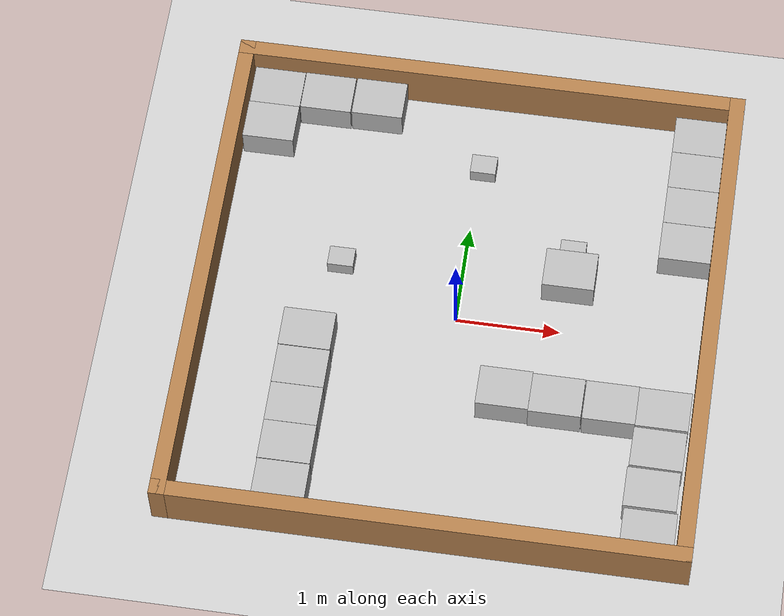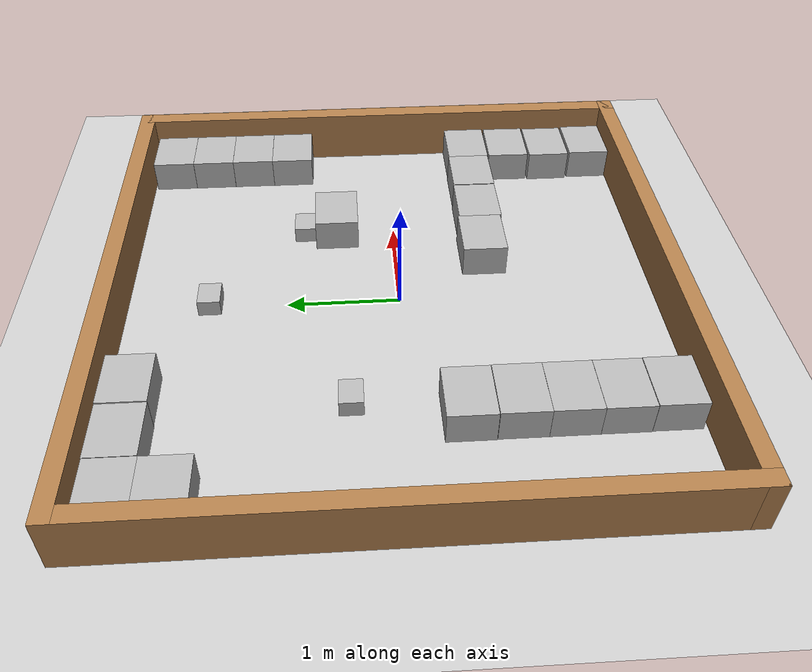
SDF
<sdf version="1.7">
 <world name="default">
  <light name="sun" type="directional">
   <pose>0 0 10 0 -0 0</pose>
   <diffuse>0.8 0.8 0.8 1</diffuse>
   <specular>0.2 0.2 0.2 1</specular>
   <attenuation>
    <range>1000</range>
    <constant>0.9</constant>
    <linear>0.01</linear>
    <quadratic>0.001</quadratic>
   </attenuation>
   <direction>-0.5 0.1 -0.9</direction>
   <spot><inner_angle>0</inner_angle><outer_angle>0</outer_angle><falloff>0</falloff></spot>
  </light>
  <model name="ground_plane">
   <static>1</static>
   <link name="link">
    <collision name="collision">
     <geometry><plane><normal>0 0 1</normal><size>100 100</size></plane></geometry>
     <surface><friction><ode><mu>100</mu><mu2>50</mu2></ode></friction></surface>
    </collision>
    <visual name="visual">
     <cast_shadows>0</cast_shadows>
     <geometry><plane><normal>0 0 1</normal><size>100 100</size></plane></geometry>
     <material>
      <script><uri>file://media/materials/scripts/gazebo.material</uri><name>Gazebo/Grey</name></script>
     </material>
    </visual>
   </link>
  </model>
  <gravity>0 0 -9.8</gravity>
  <magnetic_field>6e-06 2.3e-05 -4.2e-05</magnetic_field>
  <atmosphere type="adiabatic"/>
  <physics type="ode">
   <max_step_size>0.001</max_step_size>
   <real_time_factor>1</real_time_factor>
   <real_time_update_rate>1000</real_time_update_rate>
  </physics>
  <scene><ambient>0.4 0.4 0.4 1</ambient><background>0.7 0.7 0.7 1</background><shadows>1</shadows></scene>
  <audio><device>default</device></audio>
  <spherical_coordinates>
   <surface_model>EARTH_WGS84</surface_model>
   <latitude_deg>0</latitude_deg>
   <longitude_deg>0</longitude_deg>
   <elevation>0</elevation>
   <heading_deg>0</heading_deg>
  </spherical_coordinates>
  <model name="cardboard_box_smaller_3">
   <pose>1.02242 0.844624 0.074 0 -0 0</pose>
   <link name="link">
    <inertial>
     <mass>0.5</mass>
     <inertia>
      <ixx>0.0104167</ixx>
      <ixy>0</ixy>
      <ixz>0</ixz>
      <iyy>0.0141667</iyy>
      <iyz>0</iyz>
      <izz>0.0170833</izz>
     </inertia>
    </inertial>
    <collision name="collision">
     <geometry><box><size>0.25 0.2 0.15</size></box></geometry>
     <surface>
      <friction><ode><mu>1</mu><mu2>1</mu2></ode></friction>
      <contact><ode><kp>1e+07</kp><kd>1</kd><min_depth>0.001</min_depth><max_vel>0.1</max_vel></ode></contact>
     </surface>
    </collision>
    <visual name="visual">
     <pose>0 0 -0.075 0 -0 0</pose>
     <geometry>
      <mesh>
       <uri>model://cardboard_box/meshes/cardboard_box.dae</uri>
       <scale>0.629659 0.503728 0.377796</scale>
      </mesh>
     </geometry>
    </visual>
   </link>
  </model>
  <model name="turtlebot3_square">
   <pose>-0.00093 0.060476 0 0 -0 0</pose>
   <link name="Wall_1">
    <collision name="Wall_1_Collision">
     <geometry><box><size>5 0.15 0.5</size></box></geometry>
     <pose>0 0 0.25 0 -0 0</pose>
    </collision>
    <visual name="Wall_1_Visual">
     <pose>0 0 0.25 0 -0 0</pose>
     <geometry><box><size>5 0.15 0.5</size></box></geometry>
     <material>
      <script><uri>file://media/materials/scripts/gazebo.material</uri><name>Gazebo/Wood</name></script>
      <ambient>1 1 1 1</ambient>
     </material>
    </visual>
    <pose>-2.425 0 0 0 -0 1.5708</pose>
   </link>
   <link name="Wall_2">
    <collision name="Wall_2_Collision">
     <geometry><box><size>5 0.15 0.5</size></box></geometry>
     <pose>0 0 0.25 0 -0 0</pose>
    </collision>
    <visual name="Wall_2_Visual">
     <pose>0 0 0.25 0 -0 0</pose>
     <geometry><box><size>5 0.15 0.5</size></box></geometry>
     <material>
      <script><uri>file://media/materials/scripts/gazebo.material</uri><name>Gazebo/Wood</name></script>
      <ambient>1 1 1 1</ambient>
     </material>
    </visual>
    <pose>0 2.425 0 0 -0 0</pose>
   </link>
   <link name="Wall_3">
    <collision name="Wall_3_Collision">
     <geometry><box><size>5 0.15 0.5</size></box></geometry>
     <pose>0 0 0.25 0 -0 0</pose>
    </collision>
    <visual name="Wall_3_Visual">
     <pose>0 0 0.25 0 -0 0</pose>
     <geometry><box><size>5 0.15 0.5</size></box></geometry>
     <material>
      <script><uri>file://media/materials/scripts/gazebo.material</uri><name>Gazebo/Wood</name></script>
      <ambient>1 1 1 1</ambient>
     </material>
    </visual>
    <pose>2.425 0 0 0 0 -1.5708</pose>
   </link>
   <link name="Wall_4">
    <collision name="Wall_4_Collision">
     <geometry><box><size>5 0.15 0.5</size></box></geometry>
     <pose>0 0 0.25 0 -0 0</pose>
    </collision>
    <visual name="Wall_4_Visual">
     <pose>0 0 0.25 0 -0 0</pose>
     <geometry><box><size>5 0.15 0.5</size></box></geometry>
     <material>
      <script><uri>file://media/materials/scripts/gazebo.material</uri><name>Gazebo/Wood</name></script>
      <ambient>1 1 1 1</ambient>
     </material>
    </visual>
    <pose>0 -2.425 0 0 -0 3.14159</pose>
   </link>
   <static>1</static>
  </model>
  <model name="cardboard_box">
   <pose>1.02883 0.542919 0.149 0 -0 0</pose>
   <link name="link">
    <inertial>
     <mass>2</mass>
     <inertia>
      <ixx>0.0416667</ixx>
      <ixy>0</ixy>
      <ixz>0</ixz>
      <iyy>0.0566667</iyy>
      <iyz>0</iyz>
      <izz>0.0683333</izz>
     </inertia>
    </inertial>
    <collision name="collision">
     <geometry><box><size>0.5 0.4 0.3</size></box></geometry>
     <surface>
      <friction><ode><mu>1</mu><mu2>1</mu2></ode></friction>
      <contact><ode><kp>1e+07</kp><kd>1</kd><min_depth>0.001</min_depth><max_vel>0.1</max_vel></ode></contact>
     </surface>
    </collision>
    <visual name="visual">
     <pose>0 0 -0.15 0 -0 0</pose>
     <geometry>
      <mesh><uri>model://cardboard_box/meshes/cardboard_box.dae</uri><scale>1.25932 1.00745 0.755591</scale></mesh>
     </geometry>
    </visual>
   </link>
  </model>
  <model name="cardboard_box_smaller_1">
   <pose>-1.17664 0.463143 0.074 0 -0 0</pose>
   <link name="link">
    <inertial>
     <mass>0.5</mass>
     <inertia>
      <ixx>0.0104167</ixx>
      <ixy>0</ixy>
      <ixz>0</ixz>
      <iyy>0.0141667</iyy>
      <iyz>0</iyz>
      <izz>0.0170833</izz>
     </inertia>
    </inertial>
    <collision name="collision">
     <geometry><box><size>0.25 0.2 0.15</size></box></geometry>
     <surface>
      <friction><ode><mu>1</mu><mu2>1</mu2></ode></friction>
      <contact><ode><kp>1e+07</kp><kd>1</kd><min_depth>0.001</min_depth><max_vel>0.1</max_vel></ode></contact>
     </surface>
    </collision>
    <visual name="visual">
     <pose>0 0 -0.075 0 -0 0</pose>
     <geometry>
      <mesh>
       <uri>model://cardboard_box/meshes/cardboard_box.dae</uri>
       <scale>0.629659 0.503728 0.377796</scale>
      </mesh>
     </geometry>
    </visual>
   </link>
  </model>
  <model name="cardboard_box_smaller_7">
   <pose>0.041545 1.67898 0.074 0 -0 0</pose>
   <link name="link">
    <inertial>
     <mass>0.5</mass>
     <inertia>
      <ixx>0.0104167</ixx>
      <ixy>0</ixy>
      <ixz>0</ixz>
      <iyy>0.0141667</iyy>
      <iyz>0</iyz>
      <izz>0.0170833</izz>
     </inertia>
    </inertial>
    <collision name="collision">
     <geometry><box><size>0.25 0.2 0.15</size></box></geometry>
     <surface>
      <friction><ode><mu>1</mu><mu2>1</mu2></ode></friction>
      <contact><ode><kp>1e+07</kp><kd>1</kd><min_depth>0.001</min_depth><max_vel>0.1</max_vel></ode></contact>
     </surface>
    </collision>
    <visual name="visual">
     <pose>0 0 -0.075 0 -0 0</pose>
     <geometry>
      <mesh>
       <uri>model://cardboard_box/meshes/cardboard_box.dae</uri>
       <scale>0.629659 0.503728 0.377796</scale>
      </mesh>
     </geometry>
    </visual>
   </link>
  </model>
  <model name="cardboard_box_0">
   <pose>-1.34846 -2.05097 0.149 0 -0 0</pose>
   <link name="link">
    <inertial>
     <mass>2</mass>
     <inertia>
      <ixx>0.0416667</ixx>
      <ixy>0</ixy>
      <ixz>0</ixz>
      <iyy>0.0566667</iyy>
      <iyz>0</iyz>
      <izz>0.0683333</izz>
     </inertia>
    </inertial>
    <collision name="collision">
     <geometry><box><size>0.5 0.4 0.3</size></box></geometry>
     <surface>
      <friction><ode><mu>1</mu><mu2>1</mu2></ode></friction>
      <contact><ode><kp>1e+07</kp><kd>1</kd><min_depth>0.001</min_depth><max_vel>0.1</max_vel></ode></contact>
     </surface>
    </collision>
    <visual name="visual">
     <pose>0 0 -0.15 0 -0 0</pose>
     <geometry>
      <mesh><uri>model://cardboard_box/meshes/cardboard_box.dae</uri><scale>1.25932 1.00745 0.755591</scale></mesh>
     </geometry>
    </visual>
   </link>
  </model>
  <model name="cardboard_box_1">
   <pose>-1.35278 -1.64687 0.149 0 -0 0</pose>
   <link name="link">
    <inertial>
     <mass>2</mass>
     <inertia>
      <ixx>0.0416667</ixx>
      <ixy>0</ixy>
      <ixz>0</ixz>
      <iyy>0.0566667</iyy>
      <iyz>0</iyz>
      <izz>0.0683333</izz>
     </inertia>
    </inertial>
    <collision name="collision">
     <geometry><box><size>0.5 0.4 0.3</size></box></geometry>
     <surface>
      <friction><ode><mu>1</mu><mu2>1</mu2></ode></friction>
      <contact><ode><kp>1e+07</kp><kd>1</kd><min_depth>0.001</min_depth><max_vel>0.1</max_vel></ode></contact>
     </surface>
    </collision>
    <visual name="visual">
     <pose>0 0 -0.15 0 -0 0</pose>
     <geometry>
      <mesh><uri>model://cardboard_box/meshes/cardboard_box.dae</uri><scale>1.25932 1.00745 0.755591</scale></mesh>
     </geometry>
    </visual>
   </link>
  </model>
  <model name="cardboard_box_2">
   <pose>-1.35349 -1.24637 0.149 0 -0 0</pose>
   <link name="link">
    <inertial>
     <mass>2</mass>
     <inertia>
      <ixx>0.0416667</ixx>
      <ixy>0</ixy>
      <ixz>0</ixz>
      <iyy>0.0566667</iyy>
      <iyz>0</iyz>
      <izz>0.0683333</izz>
     </inertia>
    </inertial>
    <collision name="collision">
     <geometry><box><size>0.5 0.4 0.3</size></box></geometry>
     <surface>
      <friction><ode><mu>1</mu><mu2>1</mu2></ode></friction>
      <contact><ode><kp>1e+07</kp><kd>1</kd><min_depth>0.001</min_depth><max_vel>0.1</max_vel></ode></contact>
     </surface>
    </collision>
    <visual name="visual">
     <pose>0 0 -0.15 0 -0 0</pose>
     <geometry>
      <mesh><uri>model://cardboard_box/meshes/cardboard_box.dae</uri><scale>1.25932 1.00745 0.755591</scale></mesh>
     </geometry>
    </visual>
   </link>
  </model>
  <model name="cardboard_box_3">
   <pose>-1.35421 -0.845865 0.149 0 -0 0</pose>
   <link name="link">
    <inertial>
     <mass>2</mass>
     <inertia>
      <ixx>0.0416667</ixx>
      <ixy>0</ixy>
      <ixz>0</ixz>
      <iyy>0.0566667</iyy>
      <iyz>0</iyz>
      <izz>0.0683333</izz>
     </inertia>
    </inertial>
    <collision name="collision">
     <geometry><box><size>0.5 0.4 0.3</size></box></geometry>
     <surface>
      <friction><ode><mu>1</mu><mu2>1</mu2></ode></friction>
      <contact><ode><kp>1e+07</kp><kd>1</kd><min_depth>0.001</min_depth><max_vel>0.1</max_vel></ode></contact>
     </surface>
    </collision>
    <visual name="visual">
     <pose>0 0 -0.15 0 -0 0</pose>
     <geometry>
      <mesh><uri>model://cardboard_box/meshes/cardboard_box.dae</uri><scale>1.25932 1.00745 0.755591</scale></mesh>
     </geometry>
    </visual>
   </link>
  </model>
  <model name="cardboard_box_4">
   <pose>-1.35854 -0.441764 0.149 0 -0 0</pose>
   <link name="link">
    <inertial>
     <mass>2</mass>
     <inertia>
      <ixx>0.0416667</ixx>
      <ixy>0</ixy>
      <ixz>0</ixz>
      <iyy>0.0566667</iyy>
      <iyz>0</iyz>
      <izz>0.0683333</izz>
     </inertia>
    </inertial>
    <collision name="collision">
     <geometry><box><size>0.5 0.4 0.3</size></box></geometry>
     <surface>
      <friction><ode><mu>1</mu><mu2>1</mu2></ode></friction>
      <contact><ode><kp>1e+07</kp><kd>1</kd><min_depth>0.001</min_depth><max_vel>0.1</max_vel></ode></contact>
     </surface>
    </collision>
    <visual name="visual">
     <pose>0 0 -0.15 0 -0 0</pose>
     <geometry>
      <mesh><uri>model://cardboard_box/meshes/cardboard_box.dae</uri><scale>1.25932 1.00745 0.755591</scale></mesh>
     </geometry>
    </visual>
   </link>
  </model>
  <model name="cardboard_box_5">
   <pose>2.07127 -1.24577 0.149 -0 -0 -0.010845</pose>
   <link name="link">
    <inertial>
     <mass>2</mass>
     <inertia>
      <ixx>0.0416667</ixx>
      <ixy>0</ixy>
      <ixz>0</ixz>
      <iyy>0.0566667</iyy>
      <iyz>0</iyz>
      <izz>0.0683333</izz>
     </inertia>
    </inertial>
    <collision name="collision">
     <geometry><box><size>0.5 0.4 0.3</size></box></geometry>
     <surface>
      <friction><ode><mu>1</mu><mu2>1</mu2></ode></friction>
      <contact><ode><kp>1e+07</kp><kd>1</kd><min_depth>0.001</min_depth><max_vel>0.1</max_vel></ode></contact>
     </surface>
    </collision>
    <visual name="visual">
     <pose>0 0 -0.15 0 -0 0</pose>
     <geometry>
      <mesh><uri>model://cardboard_box/meshes/cardboard_box.dae</uri><scale>1.25932 1.00745 0.755591</scale></mesh>
     </geometry>
    </visual>
   </link>
  </model>
  <model name="cardboard_box_6">
   <pose>1.57873 -0.82342 0.149 0 0 -0.0003</pose>
   <link name="link">
    <inertial>
     <mass>2</mass>
     <inertia>
      <ixx>0.0416667</ixx>
      <ixy>0</ixy>
      <ixz>0</ixz>
      <iyy>0.0566667</iyy>
      <iyz>0</iyz>
      <izz>0.0683333</izz>
     </inertia>
    </inertial>
    <collision name="collision">
     <geometry><box><size>0.5 0.4 0.3</size></box></geometry>
     <surface>
      <friction><ode><mu>1</mu><mu2>1</mu2></ode></friction>
      <contact><ode><kp>1e+07</kp><kd>1</kd><min_depth>0.001</min_depth><max_vel>0.1</max_vel></ode></contact>
     </surface>
    </collision>
    <visual name="visual">
     <pose>0 0 -0.15 0 -0 0</pose>
     <geometry>
      <mesh><uri>model://cardboard_box/meshes/cardboard_box.dae</uri><scale>1.25932 1.00745 0.755591</scale></mesh>
     </geometry>
    </visual>
   </link>
  </model>
  <model name="cardboard_box_8">
   <pose>0.570077 -0.804246 0.149 0 0 -0.002513</pose>
   <link name="link">
    <inertial>
     <mass>2</mass>
     <inertia>
      <ixx>0.0416667</ixx>
      <ixy>0</ixy>
      <ixz>0</ixz>
      <iyy>0.0566667</iyy>
      <iyz>0</iyz>
      <izz>0.0683333</izz>
     </inertia>
    </inertial>
    <collision name="collision">
     <geometry><box><size>0.5 0.4 0.3</size></box></geometry>
     <surface>
      <friction><ode><mu>1</mu><mu2>1</mu2></ode></friction>
      <contact><ode><kp>1e+07</kp><kd>1</kd><min_depth>0.001</min_depth><max_vel>0.1</max_vel></ode></contact>
     </surface>
    </collision>
    <visual name="visual">
     <pose>0 0 -0.15 0 -0 0</pose>
     <geometry>
      <mesh><uri>model://cardboard_box/meshes/cardboard_box.dae</uri><scale>1.25932 1.00745 0.755591</scale></mesh>
     </geometry>
    </visual>
   </link>
  </model>
  <model name="cardboard_box_9">
   <pose>2.05787 -1.66209 0.149 -0 -0 -0.000152</pose>
   <link name="link">
    <inertial>
     <mass>2</mass>
     <inertia>
      <ixx>0.0416667</ixx>
      <ixy>0</ixy>
      <ixz>0</ixz>
      <iyy>0.0566667</iyy>
      <iyz>0</iyz>
      <izz>0.0683333</izz>
     </inertia>
    </inertial>
    <collision name="collision">
     <geometry><box><size>0.5 0.4 0.3</size></box></geometry>
     <surface>
      <friction><ode><mu>1</mu><mu2>1</mu2></ode></friction>
      <contact><ode><kp>1e+07</kp><kd>1</kd><min_depth>0.001</min_depth><max_vel>0.1</max_vel></ode></contact>
     </surface>
    </collision>
    <visual name="visual">
     <pose>0 0 -0.15 0 -0 0</pose>
     <geometry>
      <mesh><uri>model://cardboard_box/meshes/cardboard_box.dae</uri><scale>1.25932 1.00745 0.755591</scale></mesh>
     </geometry>
    </visual>
   </link>
  </model>
  <model name="cardboard_box_10">
   <pose>2.07383 -2.08371 0.149 0 -0 0.000575</pose>
   <link name="link">
    <inertial>
     <mass>2</mass>
     <inertia>
      <ixx>0.0416667</ixx>
      <ixy>0</ixy>
      <ixz>0</ixz>
      <iyy>0.0566667</iyy>
      <iyz>0</iyz>
      <izz>0.0683333</izz>
     </inertia>
    </inertial>
    <collision name="collision">
     <geometry><box><size>0.5 0.4 0.3</size></box></geometry>
     <surface>
      <friction><ode><mu>1</mu><mu2>1</mu2></ode></friction>
      <contact><ode><kp>1e+07</kp><kd>1</kd><min_depth>0.001</min_depth><max_vel>0.1</max_vel></ode></contact>
     </surface>
    </collision>
    <visual name="visual">
     <pose>0 0 -0.15 0 -0 0</pose>
     <geometry>
      <mesh><uri>model://cardboard_box/meshes/cardboard_box.dae</uri><scale>1.25932 1.00745 0.755591</scale></mesh>
     </geometry>
    </visual>
   </link>
  </model>
  <model name="cardboard_box_11">
   <pose>2.0779 -0.828584 0.149 0 -0 -0.000273</pose>
   <link name="link">
    <inertial>
     <mass>2</mass>
     <inertia>
      <ixx>0.0416667</ixx>
      <ixy>0</ixy>
      <ixz>0</ixz>
      <iyy>0.0566667</iyy>
      <iyz>0</iyz>
      <izz>0.0683333</izz>
     </inertia>
    </inertial>
    <collision name="collision">
     <geometry><box><size>0.5 0.4 0.3</size></box></geometry>
     <surface>
      <friction><ode><mu>1</mu><mu2>1</mu2></ode></friction>
      <contact><ode><kp>1e+07</kp><kd>1</kd><min_depth>0.001</min_depth><max_vel>0.1</max_vel></ode></contact>
     </surface>
    </collision>
    <visual name="visual">
     <pose>0 0 -0.15 0 -0 0</pose>
     <geometry>
      <mesh><uri>model://cardboard_box/meshes/cardboard_box.dae</uri><scale>1.25932 1.00745 0.755591</scale></mesh>
     </geometry>
    </visual>
   </link>
  </model>
  <model name="cardboard_box_12">
   <pose>2.09963 2.18708 0.149 0 0 -1.5e-05</pose>
   <link name="link">
    <inertial>
     <mass>2</mass>
     <inertia>
      <ixx>0.0416667</ixx>
      <ixy>0</ixy>
      <ixz>0</ixz>
      <iyy>0.0566667</iyy>
      <iyz>0</iyz>
      <izz>0.0683333</izz>
     </inertia>
    </inertial>
    <collision name="collision">
     <geometry><box><size>0.5 0.4 0.3</size></box></geometry>
     <surface>
      <friction><ode><mu>1</mu><mu2>1</mu2></ode></friction>
      <contact><ode><kp>1e+07</kp><kd>1</kd><min_depth>0.001</min_depth><max_vel>0.1</max_vel></ode></contact>
     </surface>
    </collision>
    <visual name="visual">
     <pose>0 0 -0.15 0 -0 0</pose>
     <geometry>
      <mesh><uri>model://cardboard_box/meshes/cardboard_box.dae</uri><scale>1.25932 1.00745 0.755591</scale></mesh>
     </geometry>
    </visual>
   </link>
  </model>
  <model name="cardboard_box_13">
   <pose>2.09962 1.7868 0.149 0 0 -3e-06</pose>
   <link name="link">
    <inertial>
     <mass>2</mass>
     <inertia>
      <ixx>0.0416667</ixx>
      <ixy>0</ixy>
      <ixz>0</ixz>
      <iyy>0.0566667</iyy>
      <iyz>0</iyz>
      <izz>0.0683333</izz>
     </inertia>
    </inertial>
    <collision name="collision">
     <geometry><box><size>0.5 0.4 0.3</size></box></geometry>
     <surface>
      <friction><ode><mu>1</mu><mu2>1</mu2></ode></friction>
      <contact><ode><kp>1e+07</kp><kd>1</kd><min_depth>0.001</min_depth><max_vel>0.1</max_vel></ode></contact>
     </surface>
    </collision>
    <visual name="visual">
     <pose>0 0 -0.15 0 -0 0</pose>
     <geometry>
      <mesh><uri>model://cardboard_box/meshes/cardboard_box.dae</uri><scale>1.25932 1.00745 0.755591</scale></mesh>
     </geometry>
    </visual>
   </link>
  </model>
  <model name="cardboard_box_14">
   <pose>2.09962 1.38654 0.149 0 0 -3e-06</pose>
   <link name="link">
    <inertial>
     <mass>2</mass>
     <inertia>
      <ixx>0.0416667</ixx>
      <ixy>0</ixy>
      <ixz>0</ixz>
      <iyy>0.0566667</iyy>
      <iyz>0</iyz>
      <izz>0.0683333</izz>
     </inertia>
    </inertial>
    <collision name="collision">
     <geometry><box><size>0.5 0.4 0.3</size></box></geometry>
     <surface>
      <friction><ode><mu>1</mu><mu2>1</mu2></ode></friction>
      <contact><ode><kp>1e+07</kp><kd>1</kd><min_depth>0.001</min_depth><max_vel>0.1</max_vel></ode></contact>
     </surface>
    </collision>
    <visual name="visual">
     <pose>0 0 -0.15 0 -0 0</pose>
     <geometry>
      <mesh><uri>model://cardboard_box/meshes/cardboard_box.dae</uri><scale>1.25932 1.00745 0.755591</scale></mesh>
     </geometry>
    </visual>
   </link>
  </model>
  <model name="cardboard_box_15">
   <pose>2.09818 0.986278 0.149 0 -0 0</pose>
   <link name="link">
    <inertial>
     <mass>2</mass>
     <inertia>
      <ixx>0.0416667</ixx>
      <ixy>0</ixy>
      <ixz>0</ixz>
      <iyy>0.0566667</iyy>
      <iyz>0</iyz>
      <izz>0.0683333</izz>
     </inertia>
    </inertial>
    <collision name="collision">
     <geometry><box><size>0.5 0.4 0.3</size></box></geometry>
     <surface>
      <friction><ode><mu>1</mu><mu2>1</mu2></ode></friction>
      <contact><ode><kp>1e+07</kp><kd>1</kd><min_depth>0.001</min_depth><max_vel>0.1</max_vel></ode></contact>
     </surface>
    </collision>
    <visual name="visual">
     <pose>0 0 -0.15 0 -0 0</pose>
     <geometry>
      <mesh><uri>model://cardboard_box/meshes/cardboard_box.dae</uri><scale>1.25932 1.00745 0.755591</scale></mesh>
     </geometry>
    </visual>
   </link>
  </model>
  <model name="cardboard_box_16">
   <pose>-2.08129 2.19249 0.149 0 -0 0</pose>
   <link name="link">
    <inertial>
     <mass>2</mass>
     <inertia>
      <ixx>0.0416667</ixx>
      <ixy>0</ixy>
      <ixz>0</ixz>
      <iyy>0.0566667</iyy>
      <iyz>0</iyz>
      <izz>0.0683333</izz>
     </inertia>
    </inertial>
    <collision name="collision">
     <geometry><box><size>0.5 0.4 0.3</size></box></geometry>
     <surface>
      <friction><ode><mu>1</mu><mu2>1</mu2></ode></friction>
      <contact><ode><kp>1e+07</kp><kd>1</kd><min_depth>0.001</min_depth><max_vel>0.1</max_vel></ode></contact>
     </surface>
    </collision>
    <visual name="visual">
     <pose>0 0 -0.15 0 -0 0</pose>
     <geometry>
      <mesh><uri>model://cardboard_box/meshes/cardboard_box.dae</uri><scale>1.25932 1.00745 0.755591</scale></mesh>
     </geometry>
    </visual>
   </link>
  </model>
  <model name="cardboard_box_17">
   <pose>-1.57746 2.19669 0.149 0 -0 0</pose>
   <link name="link">
    <inertial>
     <mass>2</mass>
     <inertia>
      <ixx>0.0416667</ixx>
      <ixy>0</ixy>
      <ixz>0</ixz>
      <iyy>0.0566667</iyy>
      <iyz>0</iyz>
      <izz>0.0683333</izz>
     </inertia>
    </inertial>
    <collision name="collision">
     <geometry><box><size>0.5 0.4 0.3</size></box></geometry>
     <surface>
      <friction><ode><mu>1</mu><mu2>1</mu2></ode></friction>
      <contact><ode><kp>1e+07</kp><kd>1</kd><min_depth>0.001</min_depth><max_vel>0.1</max_vel></ode></contact>
     </surface>
    </collision>
    <visual name="visual">
     <pose>0 0 -0.15 0 -0 0</pose>
     <geometry>
      <mesh><uri>model://cardboard_box/meshes/cardboard_box.dae</uri><scale>1.25932 1.00745 0.755591</scale></mesh>
     </geometry>
    </visual>
   </link>
  </model>
  <model name="cardboard_box_18">
   <pose>-1.06724 2.20092 0.149 0 -0 0</pose>
   <link name="link">
    <inertial>
     <mass>2</mass>
     <inertia>
      <ixx>0.0416667</ixx>
      <ixy>0</ixy>
      <ixz>0</ixz>
      <iyy>0.0566667</iyy>
      <iyz>0</iyz>
      <izz>0.0683333</izz>
     </inertia>
    </inertial>
    <collision name="collision">
     <geometry><box><size>0.5 0.4 0.3</size></box></geometry>
     <surface>
      <friction><ode><mu>1</mu><mu2>1</mu2></ode></friction>
      <contact><ode><kp>1e+07</kp><kd>1</kd><min_depth>0.001</min_depth><max_vel>0.1</max_vel></ode></contact>
     </surface>
    </collision>
    <visual name="visual">
     <pose>0 0 -0.15 0 -0 0</pose>
     <geometry>
      <mesh><uri>model://cardboard_box/meshes/cardboard_box.dae</uri><scale>1.25932 1.00745 0.755591</scale></mesh>
     </geometry>
    </visual>
   </link>
  </model>
  <model name="cardboard_box_19">
   <pose>-2.08373 1.79251 0.149 -0 -0 -0</pose>
   <link name="link">
    <inertial>
     <mass>2</mass>
     <inertia>
      <ixx>0.0416667</ixx>
      <ixy>0</ixy>
      <ixz>0</ixz>
      <iyy>0.0566667</iyy>
      <iyz>0</iyz>
      <izz>0.0683333</izz>
     </inertia>
    </inertial>
    <collision name="collision">
     <geometry><box><size>0.5 0.4 0.3</size></box></geometry>
     <surface>
      <friction><ode><mu>1</mu><mu2>1</mu2></ode></friction>
      <contact><ode><kp>1e+07</kp><kd>1</kd><min_depth>0.001</min_depth><max_vel>0.1</max_vel></ode></contact>
     </surface>
    </collision>
    <visual name="visual">
     <pose>0 0 -0.15 0 -0 0</pose>
     <geometry>
      <mesh><uri>model://cardboard_box/meshes/cardboard_box.dae</uri><scale>1.25932 1.00745 0.755591</scale></mesh>
     </geometry>
    </visual>
   </link>
  </model>
  <model name="cardboard_box_20">
   <pose>1.06995 -0.818637 0.149 -0 -0 -0.000154</pose>
   <link name="link">
    <inertial>
     <mass>2</mass>
     <inertia>
      <ixx>0.0416667</ixx>
      <ixy>0</ixy>
      <ixz>0</ixz>
      <iyy>0.0566667</iyy>
      <iyz>0</iyz>
      <izz>0.0683333</izz>
     </inertia>
    </inertial>
    <collision name="collision">
     <geometry><box><size>0.5 0.4 0.3</size></box></geometry>
     <surface>
      <friction><ode><mu>1</mu><mu2>1</mu2></ode></friction>
      <contact><ode><kp>1e+07</kp><kd>1</kd><min_depth>0.001</min_depth><max_vel>0.1</max_vel></ode></contact>
     </surface>
    </collision>
    <visual name="visual">
     <pose>0 0 -0.15 0 -0 0</pose>
     <geometry>
      <mesh><uri>model://cardboard_box/meshes/cardboard_box.dae</uri><scale>1.25932 1.00745 0.755591</scale></mesh>
     </geometry>
    </visual>
   </link>
  </model>
 </world>
</sdf>
